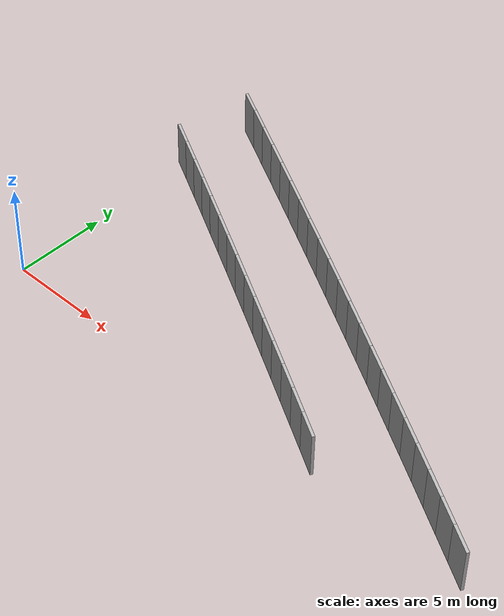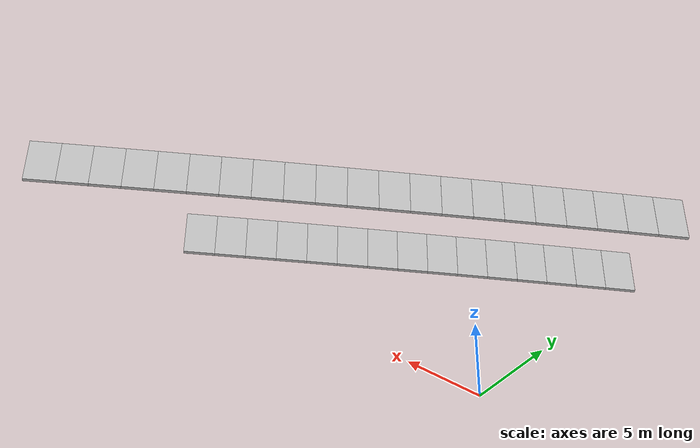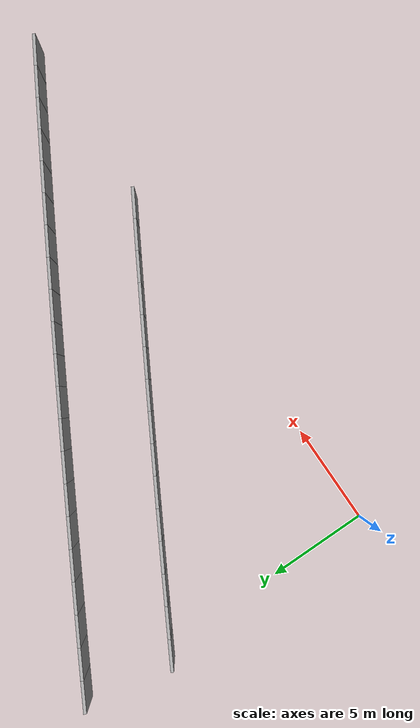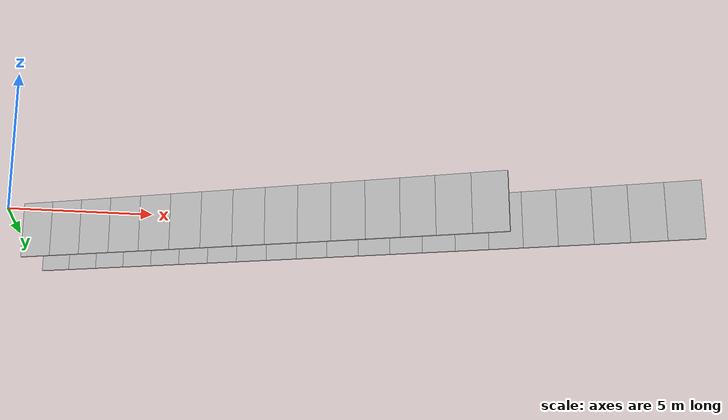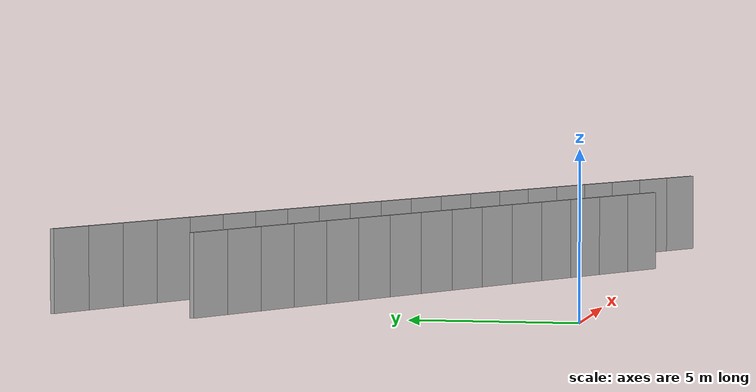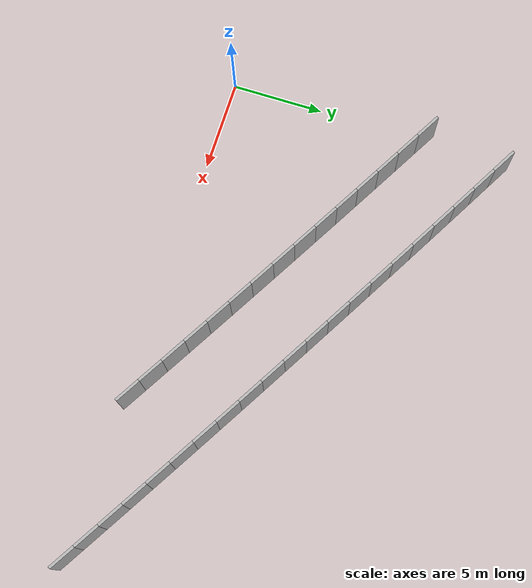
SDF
<?xml version="1.0" ?>
<sdf version="1.6">
  <model name="sps_3644">
    <pose frame="">0 0 0 0 -0 0</pose>
    <static>1</static>
    <self_collide>0</self_collide>
    <allow_auto_disable>0</allow_auto_disable>
    <link name="Wall10578">
      <kinematic>0</kinematic>
      <gravity>1</gravity>
      <self_collide>0</self_collide>
      <collision name="collision">
        <geometry>
          <box>
            <size>1.4965 0.15 2.5</size>
          </box>
        </geometry>
        <pose frame="">0 0 0 0 -0 0</pose>
      </collision>
      <visual name="visual">
        <geometry>
          <box>
            <size>1.4965 0.15 2.5</size>
          </box>
        </geometry>
        <pose frame="">0 0 0 0 -0 0</pose>
        <cast_shadows>1</cast_shadows>
        <transparency>0.0</transparency>
      </visual>
      <pose frame="">18.3793 0.52922 1.25 0 -0 2.60999</pose>
    </link>
    <link name="Wall10579">
      <kinematic>0</kinematic>
      <gravity>1</gravity>
      <self_collide>0</self_collide>
      <collision name="collision">
        <geometry>
          <box>
            <size>1.49653 0.15 2.5</size>
          </box>
        </geometry>
        <pose frame="">0 0 0 0 -0 0</pose>
      </collision>
      <visual name="visual">
        <geometry>
          <box>
            <size>1.49653 0.15 2.5</size>
          </box>
        </geometry>
        <pose frame="">0 0 0 0 -0 0</pose>
        <cast_shadows>1</cast_shadows>
        <transparency>0.0</transparency>
      </visual>
      <pose frame="">17.0886 1.2866 1.25 0 -0 2.61189</pose>
    </link>
    <link name="Wall10580">
      <kinematic>0</kinematic>
      <gravity>1</gravity>
      <self_collide>0</self_collide>
      <collision name="collision">
        <geometry>
          <box>
            <size>1.49655 0.15 2.5</size>
          </box>
        </geometry>
        <pose frame="">0 0 0 0 -0 0</pose>
      </collision>
      <visual name="visual">
        <geometry>
          <box>
            <size>1.49655 0.15 2.5</size>
          </box>
        </geometry>
        <pose frame="">0 0 0 0 -0 0</pose>
        <cast_shadows>1</cast_shadows>
        <transparency>0.0</transparency>
      </visual>
      <pose frame="">15.7965 2.04179 1.25 0 -0 2.61341</pose>
    </link>
    <link name="Wall10581">
      <kinematic>0</kinematic>
      <gravity>1</gravity>
      <self_collide>0</self_collide>
      <collision name="collision">
        <geometry>
          <box>
            <size>1.49654 0.15 2.5</size>
          </box>
        </geometry>
        <pose frame="">0 0 0 0 -0 0</pose>
      </collision>
      <visual name="visual">
        <geometry>
          <box>
            <size>1.49654 0.15 2.5</size>
          </box>
        </geometry>
        <pose frame="">0 0 0 0 -0 0</pose>
        <cast_shadows>1</cast_shadows>
        <transparency>0.0</transparency>
      </visual>
      <pose frame="">14.5033 2.795 1.25 0 -0 2.61496</pose>
    </link>
    <link name="Wall10582">
      <kinematic>0</kinematic>
      <gravity>1</gravity>
      <self_collide>0</self_collide>
      <collision name="collision">
        <geometry>
          <box>
            <size>1.49649 0.15 2.5</size>
          </box>
        </geometry>
        <pose frame="">0 0 0 0 -0 0</pose>
      </collision>
      <visual name="visual">
        <geometry>
          <box>
            <size>1.49649 0.15 2.5</size>
          </box>
        </geometry>
        <pose frame="">0 0 0 0 -0 0</pose>
        <cast_shadows>1</cast_shadows>
        <transparency>0.0</transparency>
      </visual>
      <pose frame="">13.209 3.5461 1.25 0 -0 2.61664</pose>
    </link>
    <link name="Wall10583">
      <kinematic>0</kinematic>
      <gravity>1</gravity>
      <self_collide>0</self_collide>
      <collision name="collision">
        <geometry>
          <box>
            <size>1.49654 0.15 2.5</size>
          </box>
        </geometry>
        <pose frame="">0 0 0 0 -0 0</pose>
      </collision>
      <visual name="visual">
        <geometry>
          <box>
            <size>1.49654 0.15 2.5</size>
          </box>
        </geometry>
        <pose frame="">0 0 0 0 -0 0</pose>
        <cast_shadows>1</cast_shadows>
        <transparency>0.0</transparency>
      </visual>
      <pose frame="">11.9134 4.29509 1.25 0 -0 2.61821</pose>
    </link>
    <link name="Wall10584">
      <kinematic>0</kinematic>
      <gravity>1</gravity>
      <self_collide>0</self_collide>
      <collision name="collision">
        <geometry>
          <box>
            <size>1.49655 0.15 2.5</size>
          </box>
        </geometry>
        <pose frame="">0 0 0 0 -0 0</pose>
      </collision>
      <visual name="visual">
        <geometry>
          <box>
            <size>1.49655 0.15 2.5</size>
          </box>
        </geometry>
        <pose frame="">0 0 0 0 -0 0</pose>
        <cast_shadows>1</cast_shadows>
        <transparency>0.0</transparency>
      </visual>
      <pose frame="">10.6167 5.04219 1.25 0 -0 2.61958</pose>
    </link>
    <link name="Wall10585">
      <kinematic>0</kinematic>
      <gravity>1</gravity>
      <self_collide>0</self_collide>
      <collision name="collision">
        <geometry>
          <box>
            <size>1.49634 0.15 2.5</size>
          </box>
        </geometry>
        <pose frame="">0 0 0 0 -0 0</pose>
      </collision>
      <visual name="visual">
        <geometry>
          <box>
            <size>1.49634 0.15 2.5</size>
          </box>
        </geometry>
        <pose frame="">0 0 0 0 -0 0</pose>
        <cast_shadows>1</cast_shadows>
        <transparency>0.0</transparency>
      </visual>
      <pose frame="">9.31884 5.78718 1.25 0 -0 2.62138</pose>
    </link>
    <link name="Wall10586">
      <kinematic>0</kinematic>
      <gravity>1</gravity>
      <self_collide>0</self_collide>
      <collision name="collision">
        <geometry>
          <box>
            <size>1.49668 0.15 2.5</size>
          </box>
        </geometry>
        <pose frame="">0 0 0 0 -0 0</pose>
      </collision>
      <visual name="visual">
        <geometry>
          <box>
            <size>1.49668 0.15 2.5</size>
          </box>
        </geometry>
        <pose frame="">0 0 0 0 -0 0</pose>
        <cast_shadows>1</cast_shadows>
        <transparency>0.0</transparency>
      </visual>
      <pose frame="">8.01974 6.53007 1.25 0 -0 2.62288</pose>
    </link>
    <link name="Wall10587">
      <kinematic>0</kinematic>
      <gravity>1</gravity>
      <self_collide>0</self_collide>
      <collision name="collision">
        <geometry>
          <box>
            <size>1.49644 0.15 2.5</size>
          </box>
        </geometry>
        <pose frame="">0 0 0 0 -0 0</pose>
      </collision>
      <visual name="visual">
        <geometry>
          <box>
            <size>1.49644 0.15 2.5</size>
          </box>
        </geometry>
        <pose frame="">0 0 0 0 -0 0</pose>
        <cast_shadows>1</cast_shadows>
        <transparency>0.0</transparency>
      </visual>
      <pose frame="">6.71944 7.27098 1.25 0 -0 2.62448</pose>
    </link>
    <link name="Wall10588">
      <kinematic>0</kinematic>
      <gravity>1</gravity>
      <self_collide>0</self_collide>
      <collision name="collision">
        <geometry>
          <box>
            <size>1.49642 0.15 2.5</size>
          </box>
        </geometry>
        <pose frame="">0 0 0 0 -0 0</pose>
      </collision>
      <visual name="visual">
        <geometry>
          <box>
            <size>1.49642 0.15 2.5</size>
          </box>
        </geometry>
        <pose frame="">0 0 0 0 -0 0</pose>
        <cast_shadows>1</cast_shadows>
        <transparency>0.0</transparency>
      </visual>
      <pose frame="">5.41805 8.00969 1.25 0 -0 2.62615</pose>
    </link>
    <link name="Wall10589">
      <kinematic>0</kinematic>
      <gravity>1</gravity>
      <self_collide>0</self_collide>
      <collision name="collision">
        <geometry>
          <box>
            <size>1.49658 0.15 2.5</size>
          </box>
        </geometry>
        <pose frame="">0 0 0 0 -0 0</pose>
      </collision>
      <visual name="visual">
        <geometry>
          <box>
            <size>1.49658 0.15 2.5</size>
          </box>
        </geometry>
        <pose frame="">0 0 0 0 -0 0</pose>
        <cast_shadows>1</cast_shadows>
        <transparency>0.0</transparency>
      </visual>
      <pose frame="">4.11544 8.74638 1.25 0 -0 2.62762</pose>
    </link>
    <link name="Wall10590">
      <kinematic>0</kinematic>
      <gravity>1</gravity>
      <self_collide>0</self_collide>
      <collision name="collision">
        <geometry>
          <box>
            <size>1.49642 0.15 2.5</size>
          </box>
        </geometry>
        <pose frame="">0 0 0 0 -0 0</pose>
      </collision>
      <visual name="visual">
        <geometry>
          <box>
            <size>1.49642 0.15 2.5</size>
          </box>
        </geometry>
        <pose frame="">0 0 0 0 -0 0</pose>
        <cast_shadows>1</cast_shadows>
        <transparency>0.0</transparency>
      </visual>
      <pose frame="">2.81164 9.48097 1.25 0 -0 2.62939</pose>
    </link>
    <link name="Wall10591">
      <kinematic>0</kinematic>
      <gravity>1</gravity>
      <self_collide>0</self_collide>
      <collision name="collision">
        <geometry>
          <box>
            <size>1.49662 0.15 2.5</size>
          </box>
        </geometry>
        <pose frame="">0 0 0 0 -0 0</pose>
      </collision>
      <visual name="visual">
        <geometry>
          <box>
            <size>1.49662 0.15 2.5</size>
          </box>
        </geometry>
        <pose frame="">0 0 0 0 -0 0</pose>
        <cast_shadows>1</cast_shadows>
        <transparency>0.0</transparency>
      </visual>
      <pose frame="">1.50664 10.2135 1.25 0 -0 2.63082</pose>
    </link>
    <link name="Wall10592">
      <kinematic>0</kinematic>
      <gravity>1</gravity>
      <self_collide>0</self_collide>
      <collision name="collision">
        <geometry>
          <box>
            <size>1.49637 0.15 2.5</size>
          </box>
        </geometry>
        <pose frame="">0 0 0 0 -0 0</pose>
      </collision>
      <visual name="visual">
        <geometry>
          <box>
            <size>1.49637 0.15 2.5</size>
          </box>
        </geometry>
        <pose frame="">0 0 0 0 -0 0</pose>
        <cast_shadows>1</cast_shadows>
        <transparency>0.0</transparency>
      </visual>
      <pose frame="">0.200553 10.944 1.25 0 -0 2.63245</pose>
    </link>
    <link name="Wall11170">
      <kinematic>0</kinematic>
      <gravity>1</gravity>
      <self_collide>0</self_collide>
      <collision name="collision">
        <geometry>
          <box>
            <size>1.50307 0.15 2.5</size>
          </box>
        </geometry>
        <pose frame="">0 0 0 0 -0 0</pose>
      </collision>
      <visual name="visual">
        <geometry>
          <box>
            <size>1.50307 0.15 2.5</size>
          </box>
        </geometry>
        <pose frame="">0 0 0 0 -0 0</pose>
        <cast_shadows>1</cast_shadows>
        <transparency>0.0</transparency>
      </visual>
      <pose frame="">26.9408 0.264998 1.25 0 -0 2.60236</pose>
    </link>
    <link name="Wall11171">
      <kinematic>0</kinematic>
      <gravity>1</gravity>
      <self_collide>0</self_collide>
      <collision name="collision">
        <geometry>
          <box>
            <size>1.50309 0.15 2.5</size>
          </box>
        </geometry>
        <pose frame="">0 0 0 0 -0 0</pose>
      </collision>
      <visual name="visual">
        <geometry>
          <box>
            <size>1.50309 0.15 2.5</size>
          </box>
        </geometry>
        <pose frame="">0 0 0 0 -0 0</pose>
        <cast_shadows>1</cast_shadows>
        <transparency>0.0</transparency>
      </visual>
      <pose frame="">25.6504 1.03578 1.25 0 -0 2.60393</pose>
    </link>
    <link name="Wall11172">
      <kinematic>0</kinematic>
      <gravity>1</gravity>
      <self_collide>0</self_collide>
      <collision name="collision">
        <geometry>
          <box>
            <size>1.50309 0.15 2.5</size>
          </box>
        </geometry>
        <pose frame="">0 0 0 0 -0 0</pose>
      </collision>
      <visual name="visual">
        <geometry>
          <box>
            <size>1.50309 0.15 2.5</size>
          </box>
        </geometry>
        <pose frame="">0 0 0 0 -0 0</pose>
        <cast_shadows>1</cast_shadows>
        <transparency>0.0</transparency>
      </visual>
      <pose frame="">24.3588 1.80458 1.25 0 -0 2.60544</pose>
    </link>
    <link name="Wall11173">
      <kinematic>0</kinematic>
      <gravity>1</gravity>
      <self_collide>0</self_collide>
      <collision name="collision">
        <geometry>
          <box>
            <size>1.50302 0.15 2.5</size>
          </box>
        </geometry>
        <pose frame="">0 0 0 0 -0 0</pose>
      </collision>
      <visual name="visual">
        <geometry>
          <box>
            <size>1.50302 0.15 2.5</size>
          </box>
        </geometry>
        <pose frame="">0 0 0 0 -0 0</pose>
        <cast_shadows>1</cast_shadows>
        <transparency>0.0</transparency>
      </visual>
      <pose frame="">23.066 2.5713 1.25 0 -0 2.60711</pose>
    </link>
    <link name="Wall11174">
      <kinematic>0</kinematic>
      <gravity>1</gravity>
      <self_collide>0</self_collide>
      <collision name="collision">
        <geometry>
          <box>
            <size>1.50313 0.15 2.5</size>
          </box>
        </geometry>
        <pose frame="">0 0 0 0 -0 0</pose>
      </collision>
      <visual name="visual">
        <geometry>
          <box>
            <size>1.50313 0.15 2.5</size>
          </box>
        </geometry>
        <pose frame="">0 0 0 0 -0 0</pose>
        <cast_shadows>1</cast_shadows>
        <transparency>0.0</transparency>
      </visual>
      <pose frame="">21.772 3.33601 1.25 0 -0 2.60858</pose>
    </link>
    <link name="Wall11175">
      <kinematic>0</kinematic>
      <gravity>1</gravity>
      <self_collide>0</self_collide>
      <collision name="collision">
        <geometry>
          <box>
            <size>1.50323 0.15 2.5</size>
          </box>
        </geometry>
        <pose frame="">0 0 0 0 -0 0</pose>
      </collision>
      <visual name="visual">
        <geometry>
          <box>
            <size>1.50323 0.15 2.5</size>
          </box>
        </geometry>
        <pose frame="">0 0 0 0 -0 0</pose>
        <cast_shadows>1</cast_shadows>
        <transparency>0.0</transparency>
      </visual>
      <pose frame="">20.4766 4.09871 1.25 0 -0 2.61031</pose>
    </link>
    <link name="Wall11176">
      <kinematic>0</kinematic>
      <gravity>1</gravity>
      <self_collide>0</self_collide>
      <collision name="collision">
        <geometry>
          <box>
            <size>1.50293 0.15 2.5</size>
          </box>
        </geometry>
        <pose frame="">0 0 0 0 -0 0</pose>
      </collision>
      <visual name="visual">
        <geometry>
          <box>
            <size>1.50293 0.15 2.5</size>
          </box>
        </geometry>
        <pose frame="">0 0 0 0 -0 0</pose>
        <cast_shadows>1</cast_shadows>
        <transparency>0.0</transparency>
      </visual>
      <pose frame="">19.1803 4.85939 1.25 0 -0 2.61161</pose>
    </link>
    <link name="Wall11177">
      <kinematic>0</kinematic>
      <gravity>1</gravity>
      <self_collide>0</self_collide>
      <collision name="collision">
        <geometry>
          <box>
            <size>1.50303 0.15 2.5</size>
          </box>
        </geometry>
        <pose frame="">0 0 0 0 -0 0</pose>
      </collision>
      <visual name="visual">
        <geometry>
          <box>
            <size>1.50303 0.15 2.5</size>
          </box>
        </geometry>
        <pose frame="">0 0 0 0 -0 0</pose>
        <cast_shadows>1</cast_shadows>
        <transparency>0.0</transparency>
      </visual>
      <pose frame="">17.8828 5.618 1.25 0 -0 2.61343</pose>
    </link>
    <link name="Wall11178">
      <kinematic>0</kinematic>
      <gravity>1</gravity>
      <self_collide>0</self_collide>
      <collision name="collision">
        <geometry>
          <box>
            <size>1.50304 0.15 2.5</size>
          </box>
        </geometry>
        <pose frame="">0 0 0 0 -0 0</pose>
      </collision>
      <visual name="visual">
        <geometry>
          <box>
            <size>1.50304 0.15 2.5</size>
          </box>
        </geometry>
        <pose frame="">0 0 0 0 -0 0</pose>
        <cast_shadows>1</cast_shadows>
        <transparency>0.0</transparency>
      </visual>
      <pose frame="">16.5839 6.3744 1.25 0 -0 2.61503</pose>
    </link>
    <link name="Wall11179">
      <kinematic>0</kinematic>
      <gravity>1</gravity>
      <self_collide>0</self_collide>
      <collision name="collision">
        <geometry>
          <box>
            <size>1.50306 0.15 2.5</size>
          </box>
        </geometry>
        <pose frame="">0 0 0 0 -0 0</pose>
      </collision>
      <visual name="visual">
        <geometry>
          <box>
            <size>1.50306 0.15 2.5</size>
          </box>
        </geometry>
        <pose frame="">0 0 0 0 -0 0</pose>
        <cast_shadows>1</cast_shadows>
        <transparency>0.0</transparency>
      </visual>
      <pose frame="">15.2839 7.1288 1.25 0 -0 2.61654</pose>
    </link>
    <link name="Wall11180">
      <kinematic>0</kinematic>
      <gravity>1</gravity>
      <self_collide>0</self_collide>
      <collision name="collision">
        <geometry>
          <box>
            <size>1.50315 0.15 2.5</size>
          </box>
        </geometry>
        <pose frame="">0 0 0 0 -0 0</pose>
      </collision>
      <visual name="visual">
        <geometry>
          <box>
            <size>1.50315 0.15 2.5</size>
          </box>
        </geometry>
        <pose frame="">0 0 0 0 -0 0</pose>
        <cast_shadows>1</cast_shadows>
        <transparency>0.0</transparency>
      </visual>
      <pose frame="">13.9826 7.88109 1.25 0 -0 2.61831</pose>
    </link>
    <link name="Wall11181">
      <kinematic>0</kinematic>
      <gravity>1</gravity>
      <self_collide>0</self_collide>
      <collision name="collision">
        <geometry>
          <box>
            <size>1.50286 0.15 2.5</size>
          </box>
        </geometry>
        <pose frame="">0 0 0 0 -0 0</pose>
      </collision>
      <visual name="visual">
        <geometry>
          <box>
            <size>1.50286 0.15 2.5</size>
          </box>
        </geometry>
        <pose frame="">0 0 0 0 -0 0</pose>
        <cast_shadows>1</cast_shadows>
        <transparency>0.0</transparency>
      </visual>
      <pose frame="">12.6802 8.63127 1.25 0 -0 2.6197</pose>
    </link>
    <link name="Wall11182">
      <kinematic>0</kinematic>
      <gravity>1</gravity>
      <self_collide>0</self_collide>
      <collision name="collision">
        <geometry>
          <box>
            <size>1.50307 0.15 2.5</size>
          </box>
        </geometry>
        <pose frame="">0 0 0 0 -0 0</pose>
      </collision>
      <visual name="visual">
        <geometry>
          <box>
            <size>1.50307 0.15 2.5</size>
          </box>
        </geometry>
        <pose frame="">0 0 0 0 -0 0</pose>
        <cast_shadows>1</cast_shadows>
        <transparency>0.0</transparency>
      </visual>
      <pose frame="">11.3767 9.37947 1.25 0 -0 2.62133</pose>
    </link>
    <link name="Wall11183">
      <kinematic>0</kinematic>
      <gravity>1</gravity>
      <self_collide>0</self_collide>
      <collision name="collision">
        <geometry>
          <box>
            <size>1.50332 0.15 2.5</size>
          </box>
        </geometry>
        <pose frame="">0 0 0 0 -0 0</pose>
      </collision>
      <visual name="visual">
        <geometry>
          <box>
            <size>1.50332 0.15 2.5</size>
          </box>
        </geometry>
        <pose frame="">0 0 0 0 -0 0</pose>
        <cast_shadows>1</cast_shadows>
        <transparency>0.0</transparency>
      </visual>
      <pose frame="">10.0718 10.1257 1.25 0 -0 2.62292</pose>
    </link>
    <link name="Wall11184">
      <kinematic>0</kinematic>
      <gravity>1</gravity>
      <self_collide>0</self_collide>
      <collision name="collision">
        <geometry>
          <box>
            <size>1.50289 0.15 2.5</size>
          </box>
        </geometry>
        <pose frame="">0 0 0 0 -0 0</pose>
      </collision>
      <visual name="visual">
        <geometry>
          <box>
            <size>1.50289 0.15 2.5</size>
          </box>
        </geometry>
        <pose frame="">0 0 0 0 -0 0</pose>
        <cast_shadows>1</cast_shadows>
        <transparency>0.0</transparency>
      </visual>
      <pose frame="">8.76583 10.8698 1.25 0 -0 2.62449</pose>
    </link>
    <link name="Wall11185">
      <kinematic>0</kinematic>
      <gravity>1</gravity>
      <self_collide>0</self_collide>
      <collision name="collision">
        <geometry>
          <box>
            <size>1.50315 0.15 2.5</size>
          </box>
        </geometry>
        <pose frame="">0 0 0 0 -0 0</pose>
      </collision>
      <visual name="visual">
        <geometry>
          <box>
            <size>1.50315 0.15 2.5</size>
          </box>
        </geometry>
        <pose frame="">0 0 0 0 -0 0</pose>
        <cast_shadows>1</cast_shadows>
        <transparency>0.0</transparency>
      </visual>
      <pose frame="">7.45873 11.6118 1.25 0 -0 2.62608</pose>
    </link>
    <link name="Wall11186">
      <kinematic>0</kinematic>
      <gravity>1</gravity>
      <self_collide>0</self_collide>
      <collision name="collision">
        <geometry>
          <box>
            <size>1.50298 0.15 2.5</size>
          </box>
        </geometry>
        <pose frame="">0 0 0 0 -0 0</pose>
      </collision>
      <visual name="visual">
        <geometry>
          <box>
            <size>1.50298 0.15 2.5</size>
          </box>
        </geometry>
        <pose frame="">0 0 0 0 -0 0</pose>
        <cast_shadows>1</cast_shadows>
        <transparency>0.0</transparency>
      </visual>
      <pose frame="">6.15044 12.3518 1.25 0 -0 2.6276</pose>
    </link>
    <link name="Wall11187">
      <kinematic>0</kinematic>
      <gravity>1</gravity>
      <self_collide>0</self_collide>
      <collision name="collision">
        <geometry>
          <box>
            <size>1.50315 0.15 2.5</size>
          </box>
        </geometry>
        <pose frame="">0 0 0 0 -0 0</pose>
      </collision>
      <visual name="visual">
        <geometry>
          <box>
            <size>1.50315 0.15 2.5</size>
          </box>
        </geometry>
        <pose frame="">0 0 0 0 -0 0</pose>
        <cast_shadows>1</cast_shadows>
        <transparency>0.0</transparency>
      </visual>
      <pose frame="">4.84096 13.0897 1.25 0 -0 2.6293</pose>
    </link>
    <link name="Wall11188">
      <kinematic>0</kinematic>
      <gravity>1</gravity>
      <self_collide>0</self_collide>
      <collision name="collision">
        <geometry>
          <box>
            <size>1.50307 0.15 2.5</size>
          </box>
        </geometry>
        <pose frame="">0 0 0 0 -0 0</pose>
      </collision>
      <visual name="visual">
        <geometry>
          <box>
            <size>1.50307 0.15 2.5</size>
          </box>
        </geometry>
        <pose frame="">0 0 0 0 -0 0</pose>
        <cast_shadows>1</cast_shadows>
        <transparency>0.0</transparency>
      </visual>
      <pose frame="">3.53027 13.8255 1.25 0 -0 2.6308</pose>
    </link>
    <link name="Wall11189">
      <kinematic>0</kinematic>
      <gravity>1</gravity>
      <self_collide>0</self_collide>
      <collision name="collision">
        <geometry>
          <box>
            <size>1.50323 0.15 2.5</size>
          </box>
        </geometry>
        <pose frame="">0 0 0 0 -0 0</pose>
      </collision>
      <visual name="visual">
        <geometry>
          <box>
            <size>1.50323 0.15 2.5</size>
          </box>
        </geometry>
        <pose frame="">0 0 0 0 -0 0</pose>
        <cast_shadows>1</cast_shadows>
        <transparency>0.0</transparency>
      </visual>
      <pose frame="">2.21834 14.5592 1.25 0 -0 2.63253</pose>
    </link>
    <link name="Wall11190">
      <kinematic>0</kinematic>
      <gravity>1</gravity>
      <self_collide>0</self_collide>
      <collision name="collision">
        <geometry>
          <box>
            <size>1.5031 0.15 2.5</size>
          </box>
        </geometry>
        <pose frame="">0 0 0 0 -0 0</pose>
      </collision>
      <visual name="visual">
        <geometry>
          <box>
            <size>1.5031 0.15 2.5</size>
          </box>
        </geometry>
        <pose frame="">0 0 0 0 -0 0</pose>
        <cast_shadows>1</cast_shadows>
        <transparency>0.0</transparency>
      </visual>
      <pose frame="">0.905235 15.2908 1.25 0 -0 2.63402</pose>
    </link>
  </model>
</sdf>
